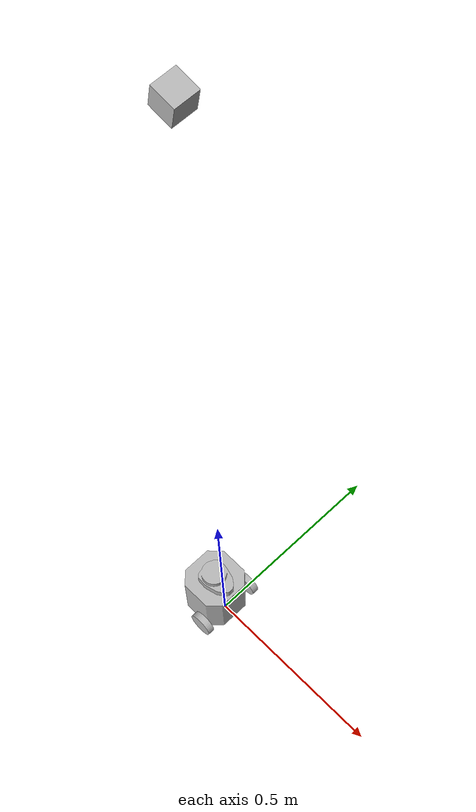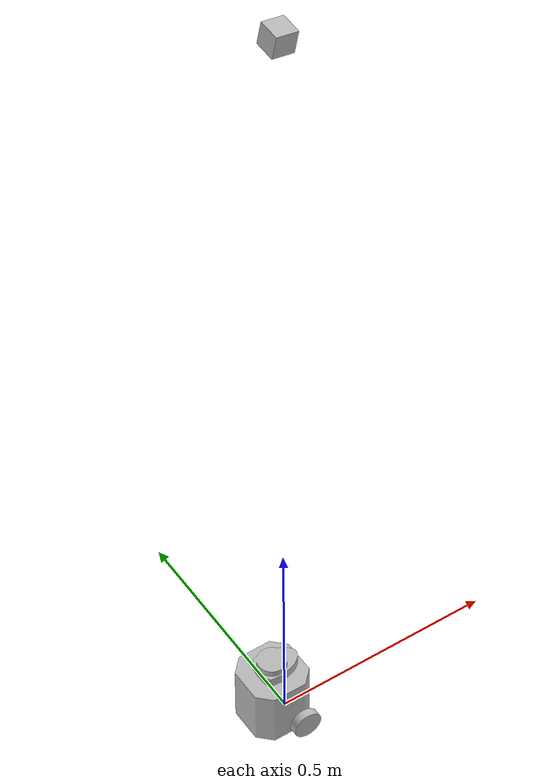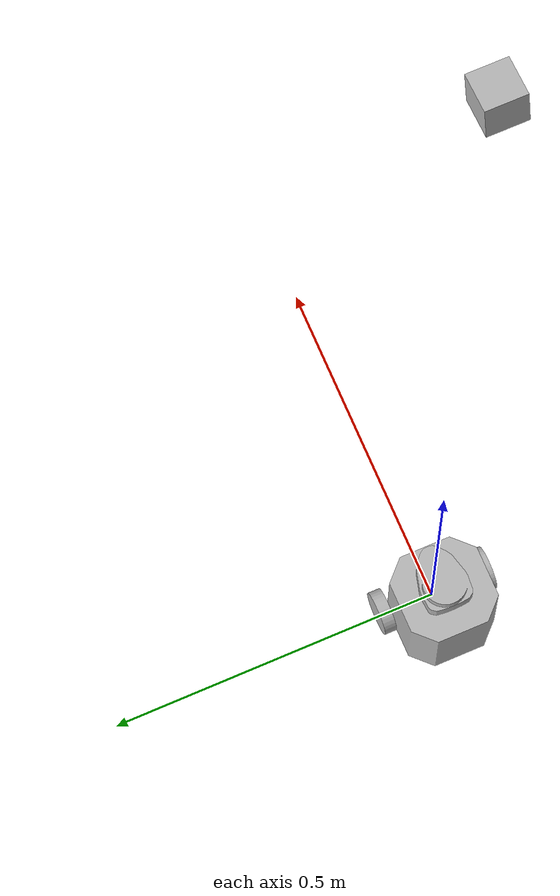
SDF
<?xml version="1.0" ?>
<sdf version="1.6">
  <model name="turtlebot3_burger">
    <pose>0.0 0.0 0.0 0.0 0.0 0.0</pose>

    <link name="base_footprint"/>

    <link name="base_link">

      <inertial>
        <pose>-0.032 0 0.070 0 0 0</pose>
        <inertia>
          <ixx>7.2397393e-01</ixx>
          <ixy>4.686399e-10</ixy>
          <ixz>-1.09525703e-08</ixz>
          <iyy>7.2397393e-01</iyy>
          <iyz>2.8582649e-09</iyz>
          <izz>6.53050163e-01</izz>
        </inertia>
        <mass>8.2573504e-01</mass>
      </inertial>

      <collision name="base_collision">
        <pose>-0.032 0 0.070 0 0 0</pose>
        <geometry>
          <box>
            <size>0.140 0.140 0.140</size>
          </box>
        </geometry>
      </collision>

      <visual name="base_visual">
        <pose>-0.032 0 0 0 0 0</pose>
        <geometry>
          <mesh>
            <uri>model://turtlebot3_common/meshes/burger_base.dae</uri>
            <scale>0.001 0.001 0.001</scale>
          </mesh>
        </geometry>
      </visual>
    </link>

    <link name="imu_link">
      <sensor name="tb3_imu" type="imu">
        <always_on>true</always_on>
        <update_rate>200</update_rate>
        <imu>
          <angular_velocity>
            <x>
              <noise type="gaussian">
                <mean>0.0</mean>
                <stddev>2e-4</stddev>
              </noise>
            </x>
            <y>
              <noise type="gaussian">
                <mean>0.0</mean>
                <stddev>2e-4</stddev>
              </noise>
            </y>
            <z>
              <noise type="gaussian">
                <mean>0.0</mean>
                <stddev>2e-4</stddev>
              </noise>
            </z>
          </angular_velocity>
          <linear_acceleration>
            <x>
              <noise type="gaussian">
                <mean>0.0</mean>
                <stddev>1.7e-2</stddev>
              </noise>
            </x>
            <y>
              <noise type="gaussian">
                <mean>0.0</mean>
                <stddev>1.7e-2</stddev>
              </noise>
            </y>
            <z>
              <noise type="gaussian">
                <mean>0.0</mean>
                <stddev>1.7e-2</stddev>
              </noise>
            </z>
          </linear_acceleration>
        </imu>
        <plugin name="turtlebot3_imu" filename="libgazebo_ros_imu_sensor.so">
          <ros>
            <remapping>~/out:=imu</remapping>
          </ros>
        </plugin>
      </sensor>
    </link>

    <link name="base_scan">
      <inertial>
        <pose>-0.020 0 0.161 0 0 0</pose>
        <inertia>
          <ixx>0.001</ixx>
          <ixy>0.000</ixy>
          <ixz>0.000</ixz>
          <iyy>0.001</iyy>
          <iyz>0.000</iyz>
          <izz>0.001</izz>
        </inertia>
        <mass>0.114</mass>
      </inertial>

      <collision name="lidar_sensor_collision">
        <pose>-0.020 0 0.161 0 0 0</pose>
        <geometry>
          <cylinder>
            <radius>0.0508</radius>
            <length>0.055</length>
          </cylinder>
        </geometry>
      </collision>

      <visual name="lidar_sensor_visual">
        <pose>-0.032 0 0.171 0 0 0</pose>
        <geometry>
          <mesh>
            <uri>model://turtlebot3_common/meshes/lds.dae</uri>
            <scale>0.001 0.001 0.001</scale>
          </mesh>
        </geometry>
      </visual>

      <sensor name="hls_lfcd_lds" type="ray">
        <always_on>true</always_on>
        <visualize>true</visualize>
        <pose>-0.032 0 0.171 0 0 0</pose>
        <update_rate>30</update_rate>
        <ray>
          <scan>
            <horizontal>
              <samples>360</samples>
              <resolution>0.500000</resolution>
              <min_angle>0.000000</min_angle>
              <max_angle>6.280000</max_angle>
            </horizontal>
          </scan>
          <range>
            <min>0.100000</min>
            <max>10</max>
            <resolution>0.015000</resolution>
          </range>
          <noise>
            <type>gaussian</type>
            <mean>0.0</mean>
            <stddev>0.01</stddev>
          </noise>
        </ray>
        <plugin name="turtlebot3_laserscan" filename="libgazebo_ros_ray_sensor.so">
          <ros>
            <remapping>~/out:=scan</remapping>
          </ros>
          <output_type>sensor_msgs/LaserScan</output_type>
          <frame_name>base_scan</frame_name>
        </plugin>
      </sensor>
    </link>

    <link name="wheel_left_link">

      <inertial>
        <pose>0 0.08 0.023 -1.57 0 0</pose>
        <inertia>
          <ixx>1.8158194e-03</ixx>
          <ixy>-9.3392e-12</ixy>
          <ixz>1.04909e-11</ixz>
          <iyy>3.2922126e-03</iyy>
          <iyz>5.75694e-11</iyz>
          <izz>1.8158194e-03</izz>
        </inertia>
        <mass>2.8498940e-02</mass>
      </inertial>

      <collision name="wheel_left_collision">
        <pose>0 0.08 0.023 -1.57 0 0</pose>
        <geometry>
          <cylinder>
            <radius>0.033</radius>
            <length>0.018</length>
          </cylinder>
        </geometry>
        <surface>
          <!-- This friction pamareter don't contain reliable data!! -->
          <friction>
            <ode>
              <mu>100000.0</mu>
              <mu2>100000.0</mu2>
              <fdir1>0 0 0</fdir1>
              <slip1>0.0</slip1>
              <slip2>0.0</slip2>
            </ode>
          </friction>
          <contact>
            <ode>
              <soft_cfm>0</soft_cfm>
              <soft_erp>0.2</soft_erp>
              <kp>1e+5</kp>
              <kd>1</kd>
              <max_vel>0.01</max_vel>
              <min_depth>0.001</min_depth>
            </ode>
          </contact>
        </surface>
      </collision>

      <visual name="wheel_left_visual">
        <pose>0 0.08 0.023 0 0 0</pose>
        <geometry>
          <mesh>
            <uri>model://turtlebot3_common/meshes/tire.dae</uri>
            <scale>0.001 0.001 0.001</scale>
          </mesh>
        </geometry>
      </visual>
    </link>

    <link name="wheel_right_link">

      <inertial>
        <pose>0.0 -0.08 0.023 -1.57 0 0</pose>
        <inertia>
          <ixx>1.8158194e-03</ixx>
          <ixy>-9.3392e-12</ixy>
          <ixz>1.04909e-11</ixz>
          <iyy>3.2922126e-03</iyy>
          <iyz>5.75694e-11</iyz>
          <izz>1.8158194e-03</izz>
        </inertia>
        <mass>2.8498940e-02</mass>
      </inertial>

      <collision name="wheel_right_collision">
        <pose>0.0 -0.08 0.023 -1.57 0 0</pose>
        <geometry>
          <cylinder>
            <radius>0.033</radius>
            <length>0.018</length>
          </cylinder>
        </geometry>
        <surface>
          <!-- This friction pamareter don't contain reliable data!! -->
          <friction>
            <ode>
              <mu>100000.0</mu>
              <mu2>100000.0</mu2>
              <fdir1>0 0 0</fdir1>
              <slip1>0.0</slip1>
              <slip2>0.0</slip2>
            </ode>
          </friction>
          <contact>
            <ode>
              <soft_cfm>0</soft_cfm>
              <soft_erp>0.2</soft_erp>
              <kp>1e+5</kp>
              <kd>1</kd>
              <max_vel>0.01</max_vel>
              <min_depth>0.001</min_depth>
            </ode>
          </contact>
        </surface>
      </collision>

      <visual name="wheel_right_visual">
        <pose>0.0 -0.08 0.023 0 0 0</pose>
        <geometry>
          <mesh>
            <uri>model://turtlebot3_common/meshes/tire.dae</uri>
            <scale>0.001 0.001 0.001</scale>
          </mesh>
        </geometry>
      </visual>
    </link>

    <link name='caster_back_link'>
      <pose>-0.081 0 -0.004 -1.57 0 0</pose>
      <inertial>
        <mass>0.005</mass>
        <inertia>
          <ixx>0.001</ixx>
          <ixy>0.000</ixy>
          <ixz>0.000</ixz>
          <iyy>0.001</iyy>
          <iyz>0.000</iyz>
          <izz>0.001</izz>
        </inertia>
      </inertial>
      <collision name='collision'>
        <geometry>
          <sphere>
            <radius>0.005000</radius>
          </sphere>
        </geometry>
        <surface>
          <contact>
            <ode>
              <soft_cfm>0</soft_cfm>
              <soft_erp>0.2</soft_erp>
              <kp>1e+5</kp>
              <kd>1</kd>
              <max_vel>0.01</max_vel>
              <min_depth>0.001</min_depth>
            </ode>
          </contact>
        </surface>
      </collision>
    </link>

    <joint name="base_joint" type="fixed">
      <parent>base_footprint</parent>
      <child>base_link</child>
      <pose>0.0 0.0 0.010 0 0 0</pose>
    </joint>

    <joint name="wheel_left_joint" type="revolute">
      <parent>base_link</parent>
      <child>wheel_left_link</child>
      <pose>0.0 0.08 0.023 -1.57 0 0</pose>
      <axis>
        <xyz>0 0 1</xyz>
      </axis>
    </joint>

    <joint name="wheel_right_joint" type="revolute">
      <parent>base_link</parent>
      <child>wheel_right_link</child>
      <pose>0.0 -0.08 0.023 -1.57 0 0</pose>
      <axis>
        <xyz>0 0 1</xyz>
      </axis>
    </joint>

    <joint name='caster_back_joint' type='ball'>
      <parent>base_link</parent>
      <child>caster_back_link</child>
    </joint>

    <joint name="imu_joint" type="fixed">
      <parent>base_link</parent>
      <child>imu_link</child>
      <pose>-0.032 0 0.068 0 0 0</pose>
      <axis>
        <xyz>0 0 1</xyz>
      </axis>
    </joint>

    <joint name="lidar_joint" type="fixed">
      <parent>base_link</parent>
      <child>base_scan</child>
      <pose>-0.032 0 0.171 0 0 0</pose>
      <axis>
        <xyz>0 0 1</xyz>
      </axis>
    </joint>

    <plugin name="turtlebot3_diff_drive" filename="libgazebo_ros_diff_drive.so">

      <ros>
      </ros>

      <update_rate>30</update_rate>

      <!-- wheels -->
      <left_joint>wheel_left_joint</left_joint>
      <right_joint>wheel_right_joint</right_joint>

      <!-- kinematics -->
      <wheel_separation>0.160</wheel_separation>
      <wheel_diameter>0.066</wheel_diameter>

      <!-- limits -->
      <max_wheel_torque>20</max_wheel_torque>
      <max_wheel_acceleration>1.0</max_wheel_acceleration>

      <command_topic>cmd_vel</command_topic>

      <!-- output -->
      <publish_odom>true</publish_odom>
      <publish_odom_tf>true</publish_odom_tf>
      <publish_wheel_tf>false</publish_wheel_tf>

      <odometry_topic>odom</odometry_topic>
      <odometry_frame>odom</odometry_frame>
      <robot_base_frame>base_footprint</robot_base_frame>

    </plugin>

    <plugin name="turtlebot3_joint_state" filename="libgazebo_ros_joint_state_publisher.so">
      <ros>
        <remapping>~/out:=joint_states</remapping>
      </ros>
      <update_rate>30</update_rate>
      <joint_name>wheel_left_joint</joint_name>
      <joint_name>wheel_right_joint</joint_name>
    </plugin>
        <!-- 摄像头 -->
    <link name="camera_link">
      <pose>0 0 2 0 0.2 0</pose> <!-- 相机位置 -->
      <inertial>
        <mass>0.0001</mass>
        <inertia>
          <ixx>0.0</ixx>
          <iyy>0.0</iyy>
          <izz>0.0</izz>
        </inertia>
      </inertial>

      <!-- 摄像头外观 -->
      <visual name="camera_visual">
        <geometry>
          <box>
            <size>0.05 0.05 0.05</size>
          </box>
        </geometry>
      </visual>

      <!-- 摄像头传感器 -->
      <sensor type="camera" name="camera_sensor">
        <pose>0 0 0 0 0 0</pose> <!-- 相机在链接中的位置 -->
        <camera>
          <horizontal_fov>1.047</horizontal_fov>
          <image>
            <width>1280</width>
            <height>720</height>
            <format>R8G8B8</format>
          </image>
          <clip>
            <near>0.1</near>
            <far>100</far>
          </clip>
        </camera>
        <always_on>true</always_on>
        <visualize>true</visualize>
        <update_rate>30</update_rate>
        <plugin name="camera_controller" filename="libgazebo_ros_camera.so">
          <ros>
            <namespace>/</namespace>
            <remapping>image_raw:=/camera/image_raw</remapping>
          </ros>
        </plugin>
      </sensor>

    </link>

    <!-- 🔴 深度相机 -->
    <link name="depth_camera_link">
      <pose>0 0 2 0 0.2 0</pose> <!-- 位置调整 -->
      <inertial>
        <mass>0.0001</mass>  <!-- 设定质量（kg），适当调整 -->
        <inertia>
          <ixx>0.0</ixx>
          <iyy>0.0</iyy>
          <izz>0.0</izz>
          <ixy>0.0</ixy>
          <ixz>0.0</ixz>
          <iyz>0.0</iyz>
        </inertia>
      </inertial>
      <sensor name="depth_camera" type="depth">
        <pose>0 0 0 0 0 0</pose>
        <camera>
          <horizontal_fov>1.5708</horizontal_fov>
          <image>
            <width>1280</width>
            <height>720</height>
            <format>R16</format>  <!-- 单通道灰度图像（深度） -->
          </image>
          <clip>
            <near>0.1</near>
            <far>10.0</far> <!-- 深度相机的最大范围 -->
          </clip>
          <depth_camera>
            <output>depth</output>
          </depth_camera>
        </camera>
        <always_on>true</always_on>
        <visualize>true</visualize>
        <update_rate>30</update_rate>

        <plugin name="depth_camera_plugin" filename="libgazebo_ros_camera.so">
          <ros>
            <namespace>/</namespace>
            <remapping>image_raw:=/camera/depth/image_raw</remapping>
            <remapping>camera_info:=/camera/depth/camera_info</remapping>
          </ros>
          <camera_name>depth_camera</camera_name>
          <frame_name>depth_camera_link</frame_name>
        </plugin>
      </sensor>
    </link>

    <!-- 连接摄像头到机器人 -->
    <joint name="camera_joint" type="fixed">
      <parent>base_link</parent> <!-- 连接到主机体 -->
      <child>camera_link</child>
      <pose>0 0 0.2 0 0 0</pose> <!-- 调整位置 -->
    </joint>

    <!-- 连接 深度相机 -->
    <joint name="depth_camera_joint" type="fixed">
      <parent>base_link</parent>
      <child>depth_camera_link</child>
      <pose>0 0 0.2 0 0 0</pose>
    </joint>

  </model>
</sdf>
